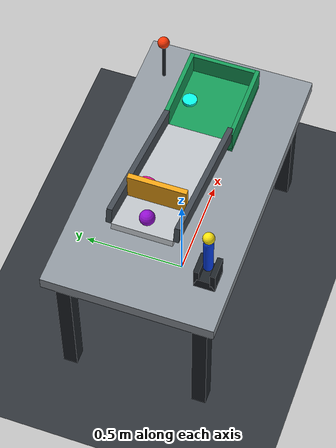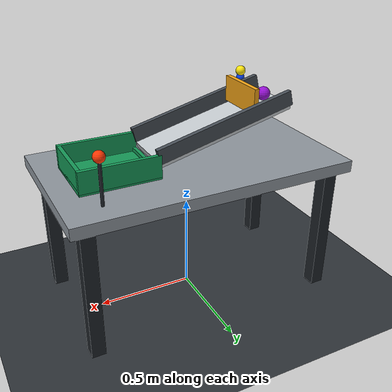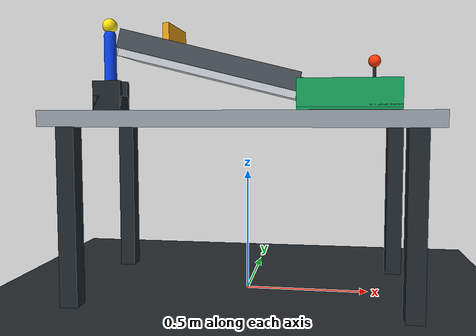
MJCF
<mujoco model="lever_ball_ramp_workbench">
  <compiler angle="radian" autolimits="true"/>
  <option timestep="0.001" gravity="0 0 -9.81" integrator="implicitfast" solver="Newton" cone="elliptic"/>
  <size nconmax="300" njmax="600"/>
  <statistic center="0 0 0.72" extent="1.55"/>
  <visual>
    <global offwidth="640" offheight="480"/>
    <quality shadowsize="2048"/>
    <map znear="0.01" zfar="8"/>
    <headlight ambient="0.32 0.32 0.34" diffuse="0.72 0.72 0.7" specular="0.18 0.18 0.18"/>
  </visual>

  <asset>
    <texture name="floor_tex" type="2d" builtin="checker" rgb1="0.13 0.15 0.17" rgb2="0.23 0.25 0.27" width="512" height="512"/>
    <material name="floor_mat" texture="floor_tex" texrepeat="5 5" reflectance="0.08"/>
    <material name="bench_mat" rgba="0.56 0.59 0.62 1" specular="0.15" roughness="0.65"/>
    <material name="frame_mat" rgba="0.12 0.14 0.16 1" specular="0.18" roughness="0.55"/>
    <material name="ramp_mat" rgba="0.77 0.79 0.81 1" specular="0.12" roughness="0.75"/>
    <material name="rail_mat" rgba="0.27 0.30 0.33 1" specular="0.18" roughness="0.62"/>
    <material name="lever_blue_mat" rgba="0.03 0.25 0.92 1" specular="0.35" roughness="0.3"/>
    <material name="gate_mat" rgba="0.95 0.64 0.08 1" specular="0.25" roughness="0.45"/>
    <material name="ball_purple_mat" rgba="0.58 0.06 0.82 1" specular="0.42" roughness="0.25"/>
    <material name="tray_mat" rgba="0.08 0.60 0.34 1" specular="0.18" roughness="0.55"/>
  </asset>

  <default>
    <geom friction="0.65 0.01 0.002" condim="6" solref="0.002 1" solimp="0.98 0.999 0.0005"/>
    <default class="world_part">
      <geom contype="1" conaffinity="7"/>
    </default>
    <default class="robot_part">
      <geom contype="2" conaffinity="7"/>
    </default>
    <default class="payload_part">
      <geom contype="4" conaffinity="7"/>
    </default>
  </default>

  <worldbody>
    <light name="key_light" pos="-1.0 -1.1 2.7" dir="0.3 0.25 -1" directional="true" castshadow="true"/>
    <light name="fill_light" pos="1.3 0.5 1.9" dir="-0.8 -0.2 -1" directional="true" diffuse="0.38 0.4 0.45" specular="0.06 0.06 0.06"/>
    <camera name="inspection_camera" pos="1.2 -1.2 1.42" quat="0.7612142645 0.5235515583 0.2168621560 0.3153052722" fovy="48"/>

    <geom name="ground_geom" class="world_part" type="plane" size="2.5 2.5 0.1" material="floor_mat"/>

    <body name="lab_bench" pos="0 0 0.72">
      <geom name="lab_bench_top_geom" class="world_part" type="box" size="0.725 0.4 0.03" material="bench_mat" friction="0.9 0.01 0.001"/>
      <geom name="bench_leg_fl" class="world_part" type="box" pos="-0.64 -0.32 -0.36" size="0.035 0.035 0.36" material="frame_mat"/>
      <geom name="bench_leg_fr" class="world_part" type="box" pos="0.64 -0.32 -0.36" size="0.035 0.035 0.36" material="frame_mat"/>
      <geom name="bench_leg_bl" class="world_part" type="box" pos="-0.64 0.32 -0.36" size="0.035 0.035 0.36" material="frame_mat"/>
      <geom name="bench_leg_br" class="world_part" type="box" pos="0.64 0.32 -0.36" size="0.035 0.035 0.36" material="frame_mat"/>
    </body>

    <body name="ramp_track" pos="-0.15 0 0.9" quat="0.9925461516 0 0.1218693434 0">
      <geom name="ramp_track_geom" class="world_part" type="box" size="0.37 0.14 0.015" material="ramp_mat" friction="0.55 0.01 0.002"/>
    </body>
    <body name="ramp_left_rail" pos="-0.1372986 0.1525 0.9509405" quat="0.9925461516 0 0.1218693434 0">
      <geom name="ramp_left_rail_geom" class="world_part" type="box" size="0.37 0.0125 0.0375" material="rail_mat"/>
    </body>
    <body name="ramp_right_rail" pos="-0.1372986 -0.1525 0.9509405" quat="0.9925461516 0 0.1218693434 0">
      <geom name="ramp_right_rail_geom" class="world_part" type="box" size="0.37 0.0125 0.0375" material="rail_mat"/>
    </body>

    <body name="lever_mount" pos="-0.48 -0.29 0.79">
      <geom name="lever_mount_foot" class="world_part" type="box" pos="0 0 -0.0125" size="0.052 0.05 0.0275" material="frame_mat"/>
      <geom name="lever_mount_left_cheek" class="world_part" type="box" pos="0 0.0375 0.015" size="0.052 0.0125 0.055" material="frame_mat"/>
      <geom name="lever_mount_right_cheek" class="world_part" type="box" pos="0 -0.0375 0.015" size="0.052 0.0125 0.055" material="frame_mat"/>
      <body name="blue_lever" pos="0 0 0.04">
        <joint name="lever_hinge" type="hinge" axis="0 1 0" range="-1.1 0.05" damping="1.2" armature="0.01"/>
        <geom name="blue_lever_geom" class="robot_part" type="capsule" pos="0 0 0.11" size="0.0225 0.0875" mass="0.12" material="lever_blue_mat"/>
        <site name="lever_interaction_marker" type="sphere" pos="0 0 0.235" size="0.027" rgba="1 0.9 0.05 1" group="2"/>
      </body>
    </body>

    <body name="release_gate" pos="-0.31 0 1.036">
      <joint name="gate_slide" type="slide" axis="0 0 1" range="0 0.135" damping="3.5" armature="0.01"/>
      <geom name="release_gate_geom" class="robot_part" type="box" size="0.0125 0.135 0.065" mass="0.18" material="gate_mat"/>
    </body>

    <body name="purple_ball" pos="-0.44 0 1.0239">
      <freejoint name="purple_ball_free"/>
      <geom name="purple_ball_geom" class="payload_part" type="sphere" size="0.035" mass="0.09" material="ball_purple_mat" friction="0.45 0.01 0.003"/>
    </body>

    <body name="target_tray" pos="0.41 0 0.755">
      <geom name="target_tray_bottom" class="world_part" type="box" pos="0 0 0.01" size="0.2 0.17 0.01" material="tray_mat" friction="0.7 0.01 0.002"/>
      <geom name="target_tray_left" class="world_part" type="box" pos="0 0.16 0.065" size="0.2 0.01 0.055" material="tray_mat"/>
      <geom name="target_tray_right" class="world_part" type="box" pos="0 -0.16 0.065" size="0.2 0.01 0.055" material="tray_mat"/>
      <geom name="target_tray_front" class="world_part" type="box" pos="0.19 0 0.065" size="0.01 0.15 0.055" material="tray_mat"/>
      <geom name="target_tray_back" class="world_part" type="box" pos="-0.19 0 0.025" size="0.01 0.15 0.015" material="tray_mat"/>
      <site name="target_zone_marker" type="cylinder" pos="0 0.105 0.026" size="0.035 0.008" rgba="0.02 1 0.9 1" group="2"/>
    </body>

    <site name="release_zone_marker" type="cylinder" pos="-0.2185485 0.09 0.9387339" quat="0.9925461516 0 0.1218693434 0" size="0.045 0.006" rgba="1 0.08 0.62 1" group="2"/>
    <site name="camera_checkpoint_marker" type="sphere" pos="0.54 0.28 0.98" size="0.028" rgba="1 0.22 0.02 1" group="2"/>
    <geom name="camera_checkpoint_post" class="world_part" type="cylinder" pos="0.54 0.28 0.865" size="0.008 0.115" material="frame_mat"/>
  </worldbody>

  <actuator>
    <position name="lever_position" joint="lever_hinge" kp="48" kv="5" ctrlrange="-1.05 0"/>
    <position name="gate_position" joint="gate_slide" kp="280" kv="18" ctrlrange="0 0.135"/>
  </actuator>
</mujoco>
